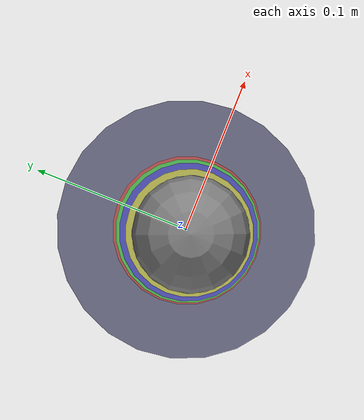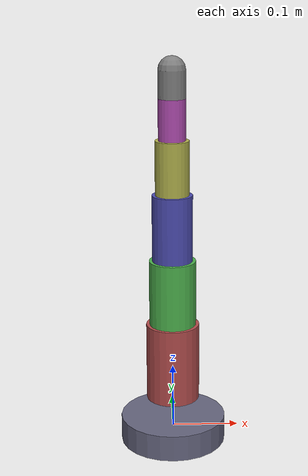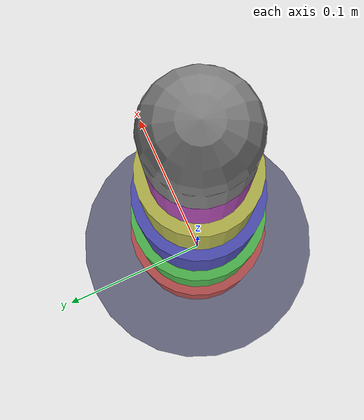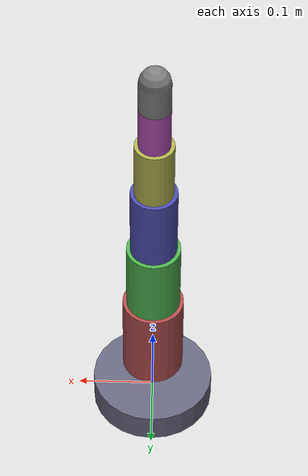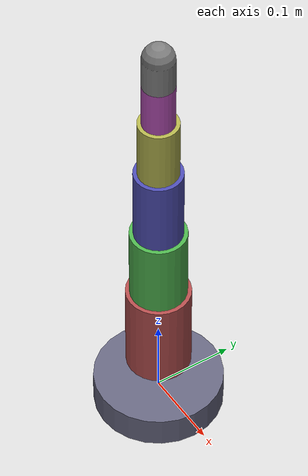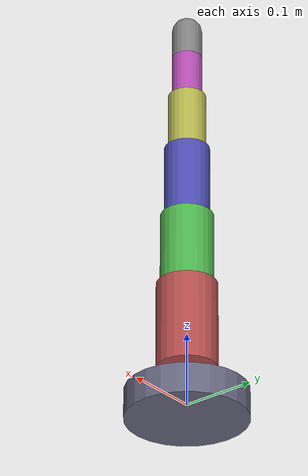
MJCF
<mujoco model="arm_6dof">
  <option timestep="0.002" gravity="0 0 -9.81"/>
  <default>
    <joint damping="0.5" armature="0.01"/>
    <geom contype="1" conaffinity="1" rgba="0.6 0.6 0.8 1"/>
    <motor ctrllimited="true" ctrlrange="-150 150"/>
  </default>
  <worldbody>
    <body name="base" pos="0 0 0">
      <geom name="base_geom" type="cylinder" size="0.08 0.02" rgba="0.4 0.4 0.5 1"/>
      <body name="link1" pos="0 0 0.05">
        <joint name="joint1" type="hinge" axis="0 0 1" range="-3.14 3.14"/>
        <geom name="link1_geom" type="cylinder" size="0.04 0.06" pos="0 0 0.06" rgba="0.7 0.3 0.3 1"/>
        <body name="link2" pos="0 0 0.12">
          <joint name="joint2" type="hinge" axis="0 1 0" range="-3.14 3.14"/>
          <geom name="link2_geom" type="cylinder" size="0.035 0.05" pos="0 0 0.05" rgba="0.3 0.7 0.3 1"/>
          <body name="link3" pos="0 0 0.1">
            <joint name="joint3" type="hinge" axis="0 1 0" range="-3.14 3.14"/>
            <geom name="link3_geom" type="cylinder" size="0.03 0.05" pos="0 0 0.05" rgba="0.3 0.3 0.7 1"/>
            <body name="link4" pos="0 0 0.1">
              <joint name="joint4" type="hinge" axis="1 0 0" range="-3.14 3.14"/>
              <geom name="link4_geom" type="cylinder" size="0.025 0.04" pos="0 0 0.04" rgba="0.7 0.7 0.3 1"/>
              <body name="link5" pos="0 0 0.08">
                <joint name="joint5" type="hinge" axis="0 1 0" range="-3.14 3.14"/>
                <geom name="link5_geom" type="cylinder" size="0.02 0.03" pos="0 0 0.03" rgba="0.7 0.3 0.7 1"/>
                <body name="link6" pos="0 0 0.06">
                  <joint name="joint6" type="hinge" axis="1 0 0" range="-3.14 3.14"/>
                  <geom name="link6_geom" type="capsule" fromto="0 0 0 0 0 0.04" size="0.02" rgba="0.5 0.5 0.5 1"/>
                  <site name="ee_site" pos="0 0 0.04" size="0.01"/>
                </body>
              </body>
            </body>
          </body>
        </body>
      </body>
    </body>
  </worldbody>
  <actuator>
    <motor name="actuator1" joint="joint1"/>
    <motor name="actuator2" joint="joint2"/>
    <motor name="actuator3" joint="joint3"/>
    <motor name="actuator4" joint="joint4"/>
    <motor name="actuator5" joint="joint5"/>
    <motor name="actuator6" joint="joint6"/>
  </actuator>
</mujoco>
